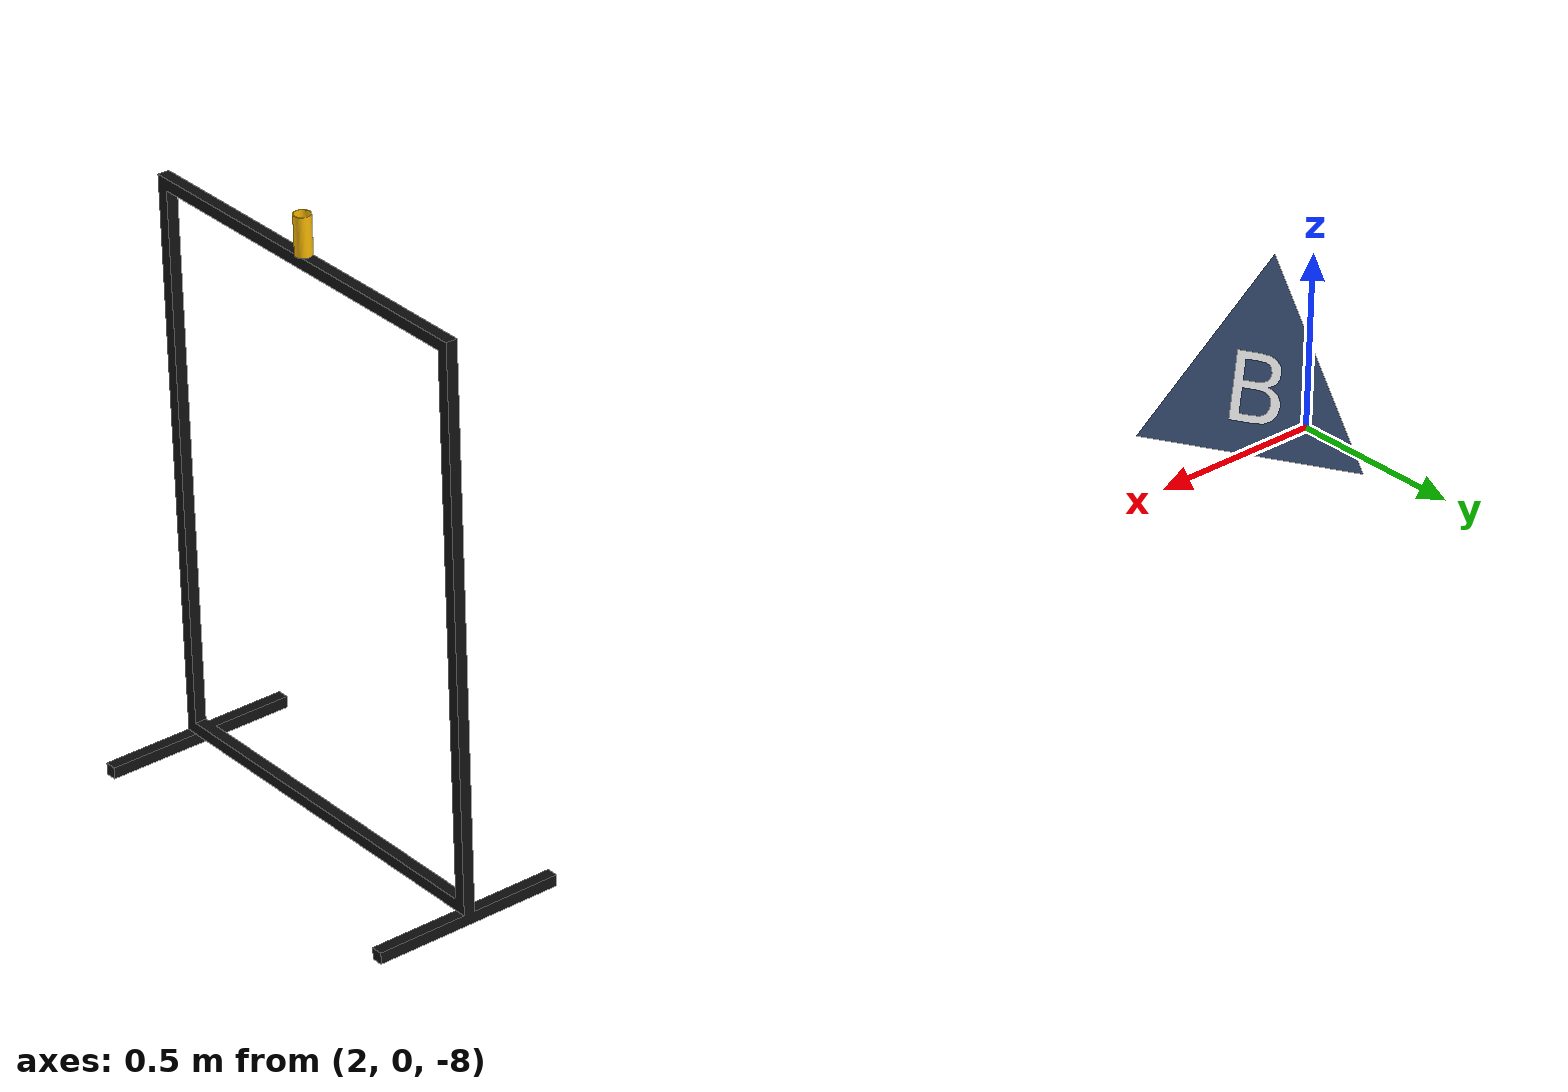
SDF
<sdf version="1.4">
 <world name="teknofest_pinger">
  <physics name="default_physics" default="true" type="ode">
   <max_step_size>0.002</max_step_size>
   <real_time_factor>1</real_time_factor>
   <real_time_update_rate>500</real_time_update_rate>
  </physics>
  <spherical_coordinates>
   <latitude_deg>56.71897669633431</latitude_deg>
   <longitude_deg>3.515625</longitude_deg>
  </spherical_coordinates>
  <light type="directional" name="underwater_sun1">
   <pose>50 0 150 0 0 0</pose>
   <diffuse>0.05 0.1 0.2 0.1</diffuse>
   <specular>0.01 0.01 0.01 1</specular>
   <direction>0.1 0.1 -1</direction>
   <cast_shadows>false</cast_shadows>
  </light>
  <light type="directional" name="underwater_diffuse_1">
   <pose>-50 0 -150 0 0 0</pose>
   <diffuse>0.2 0.3 0.4 0.8</diffuse>
   <specular>0 0 0 1</specular>
   <direction>-0.1 -0.1 -0.9</direction>
   <cast_shadows>false</cast_shadows>
  </light>
  <light type="directional" name="underwater_diffuse_2">
   <pose>-100 500 -20 0 0 0</pose>
   <diffuse>0.3 0.4 0.5 0.6</diffuse>
   <specular>0.1 0.1 0.1 1</specular>
   <direction>-0.2 -0.2 -0.7</direction>
   <cast_shadows>false</cast_shadows>
  </light>
  <light type="directional" name="underwater_diffuse_3">
   <pose>100 50 20 0 0 0</pose>
   <diffuse>0.15 0.2 0.25 0.6</diffuse>
   <specular>0 0 0 1</specular>
   <direction>-0.1 -0.1 -0.8</direction>
   <cast_shadows>false</cast_shadows>
  </light>
  <light type="directional" name="underwater_diffuse_4">
   <pose>-150 -130 50 0 0 0</pose>
   <diffuse>0.1 0.15 0.2 0.5</diffuse>
   <specular>0.05 0.05 0.05 1</specular>
   <direction>0.2 0.2 -0.7</direction>
   <cast_shadows>false</cast_shadows>
  </light>
  <include>
   <uri>model://teknofest_pinger</uri>
   <name>teknofest_pinger_gate</name>
   <pose>5.062640 -0.076969 -8.000000 0 0 1.5707963267948966</pose>
  </include>
  <include>
   <uri>model://teknofest_tetra</uri>
   <name>teknofest_tetra</name>
   <pose>2.062640 -0.076969 -8.000000 0 0 0</pose>
  </include>
  <plugin name="underwater_current_plugin" filename="libuuv_underwater_current_ros_plugin.so">
   <namespace>hydrodynamics</namespace>
   <constant_current>
    <topic>current_velocity</topic>
    <velocity><mean>0</mean><min>0</min><max>5</max><mu>0.0</mu><noiseAmp>0.0</noiseAmp></velocity>
    <horizontal_angle>
     <mean>0</mean>
     <min>-3.141592653589793238</min>
     <max>3.141592653589793238</max>
     <mu>0.0</mu>
     <noiseAmp>0.0</noiseAmp>
    </horizontal_angle>
    <vertical_angle>
     <mean>0</mean>
     <min>-3.141592653589793238</min>
     <max>3.141592653589793238</max>
     <mu>0.0</mu>
     <noiseAmp>0.0</noiseAmp>
    </vertical_angle>
   </constant_current>
  </plugin>
  <plugin name="sc_interface" filename="libuuv_sc_ros_interface_plugin.so"/>
 </world>
</sdf>

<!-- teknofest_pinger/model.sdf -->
<sdf version="1.6">
  <model name="teknofest_pinger">
    <static>true</static>
    <pose>0 0 0 0 0 0</pose>
    <link name="gate">
      <pose>0 0 0 0 0 0</pose>

      <!-- Collisions: primitive boxes over the mesh's 7 parts (a triangle
           soup collision for a static prop buys nothing but broadphase). -->
      <collision name="foot_left">
        <pose>-0.515 0 0.015 0 0 0</pose>
        <geometry><box><size>0.03 0.5 0.03</size></box></geometry>
      </collision>
      <collision name="foot_right">
        <pose>0.515 0 0.015 0 0 0</pose>
        <geometry><box><size>0.03 0.5 0.03</size></box></geometry>
      </collision>
      <collision name="post_left">
        <pose>-0.515 0 0.76 0 0 0</pose>
        <geometry><box><size>0.03 0.03 1.46</size></box></geometry>
      </collision>
      <collision name="post_right">
        <pose>0.515 0 0.76 0 0 0</pose>
        <geometry><box><size>0.03 0.03 1.46</size></box></geometry>
      </collision>
      <collision name="bottom_rail">
        <pose>0 0 0.045 0 0 0</pose>
        <geometry><box><size>1.0 0.03 0.03</size></box></geometry>
      </collision>
      <collision name="top_rail">
        <pose>0 0 1.475 0 0 0</pose>
        <geometry><box><size>1.0 0.03 0.03</size></box></geometry>
      </collision>
      <collision name="pinger_socket">
        <pose>0 0 1.54 0 0 0</pose>
        <geometry><cylinder><radius>0.0212</radius><length>0.10</length></cylinder></geometry>
      </collision>

      <visual name="frame">
        <geometry>
          <mesh><uri>model://teknofest_pinger/meshes/gate_frame.dae</uri></mesh>
        </geometry>
        <material>
          <ambient>0.02 0.02 0.021 1</ambient>
          <diffuse>0.055 0.055 0.06 1</diffuse>
          <specular>0.05 0.05 0.05 1</specular>
        </material>
      </visual>
      <visual name="pinger_socket">
        <geometry>
          <mesh><uri>model://teknofest_pinger/meshes/gate_pinger.dae</uri></mesh>
        </geometry>
        <material>
          <ambient>0.34 0.26 0.0 1</ambient>
          <diffuse>0.98 0.73 0.0 1</diffuse>
          <specular>0.1 0.1 0.1 1</specular>
        </material>
      </visual>
    </link>
  </model>
</sdf>

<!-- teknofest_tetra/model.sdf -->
<sdf version="1.6">
  <model name="teknofest_tetra">
    <static>true</static>
    <pose>0 0 0 0 0 0</pose>
    <link name="tetra">
      <pose>0 0 0 0 0 0</pose>

      <!-- Bounding box, not the solid: the faces are single triangles (no
           volume to collide with) and this prop is only ever looked at. -->
      <collision name="body">
        <pose>0 0 0.245 0 0 0</pose>
        <geometry><box><size>0.6 0.52 0.49</size></box></geometry>
      </collision>

      <visual name="face_red">
        <geometry>
          <mesh><uri>model://teknofest_tetra/meshes/tetra_red.dae</uri></mesh>
        </geometry>
        <material>
          <ambient>0.28 0.008 0.007 1</ambient>
          <diffuse>0.800 0.024 0.020 1</diffuse>
          <specular>0.05 0.05 0.05 1</specular>
        </material>
      </visual>
      <visual name="face_green">
        <geometry>
          <mesh><uri>model://teknofest_tetra/meshes/tetra_green.dae</uri></mesh>
        </geometry>
        <material>
          <ambient>0.119 0.228 0.078 1</ambient>
          <diffuse>0.341 0.651 0.224 1</diffuse>
          <specular>0.05 0.05 0.05 1</specular>
        </material>
      </visual>
      <visual name="face_blue">
        <geometry>
          <mesh><uri>model://teknofest_tetra/meshes/tetra_blue.dae</uri></mesh>
        </geometry>
        <material>
          <ambient>0.073 0.106 0.158 1</ambient>
          <diffuse>0.208 0.302 0.451 1</diffuse>
          <specular>0.05 0.05 0.05 1</specular>
        </material>
      </visual>
      <visual name="face_white">
        <geometry>
          <mesh><uri>model://teknofest_tetra/meshes/tetra_white.dae</uri></mesh>
        </geometry>
        <material>
          <ambient>0.35 0.35 0.35 1</ambient>
          <diffuse>1.0 1.0 1.0 1</diffuse>
          <specular>0.05 0.05 0.05 1</specular>
        </material>
      </visual>
      <visual name="letters">
        <geometry>
          <mesh><uri>model://teknofest_tetra/meshes/tetra_letters.dae</uri></mesh>
        </geometry>
        <material>
          <ambient>0.35 0.35 0.35 1</ambient>
          <diffuse>1.0 1.0 1.0 1</diffuse>
          <specular>0.05 0.05 0.05 1</specular>
        </material>
      </visual>
    </link>
  </model>
</sdf>
